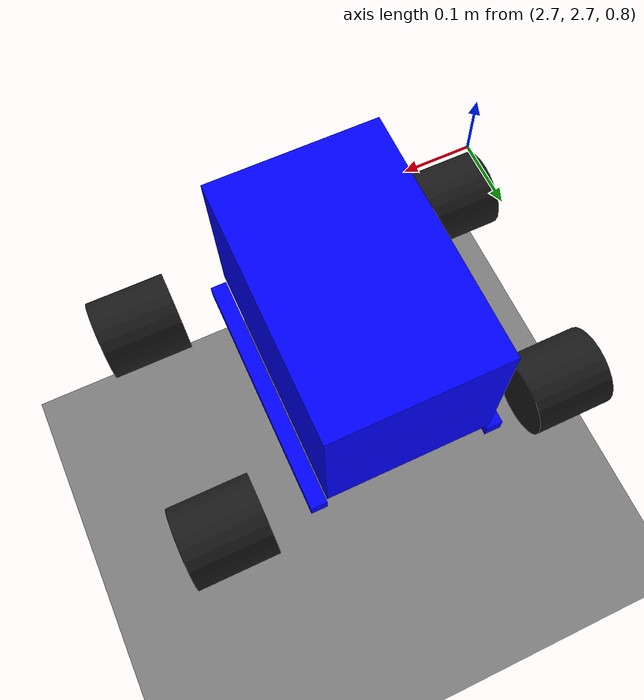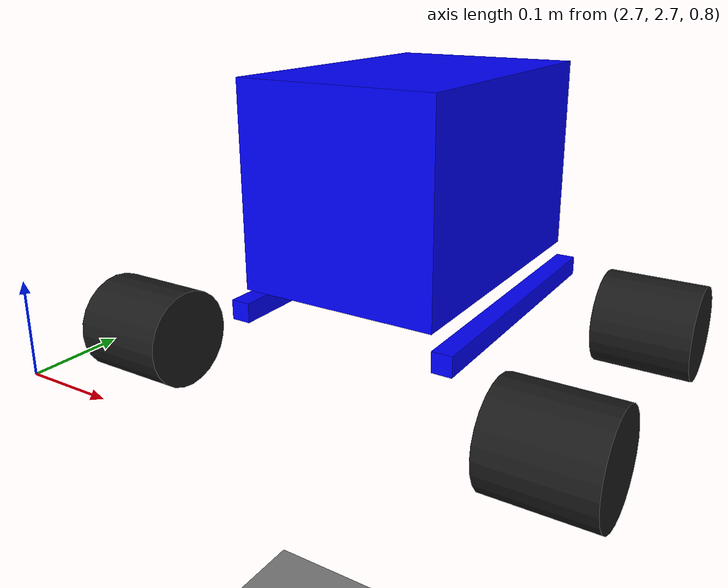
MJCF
<mujoco model="rover">
  <compiler angle="radian"/>

  <option timestep="0.005" gravity="0 0 -1.81"/>

  <worldbody>
    <geom name="surface_terrain_geom" size="50 50 0.05" type="box"/>
    <body name="chassis" pos="3 3 1">
      <inertial pos="0 -0.073 -0.109" mass="8" diaginertia="1 1 1"/>
      <joint name="chassis_free" type="free"/>
      <geom size="0.1 0.15 0.1" pos="0 -0.05 0" type="box" mass="0" rgba="0 0 1 1"/>
      <body name="rocker-left">
        <joint name="rocker-left-hinge" pos="-0.18 -0.073 -0.109" axis="1 0 0" range="-0.610865 0.610865" frictionloss="0.135"/>
        <geom size="0.01 0.15 0.01" pos="-0.11 -0.05 -0.125" type="box" mass="0.2" rgba="0 0 1 1"/>
        <body name="wheel-f-left" pos="-0.21779 0.0694 -0.16307" quat="0.707107 0 0.707107 0">
          <inertial pos="0 0 0" mass="0.24" diaginertia="0.001 0.001 0.001"/>
          <joint name="wheel-f-left-hinge" pos="0 0 0" axis="0 0 1" damping="1.89"/>
          <geom size="0.05 0.05" type="cylinder" condim="6" friction="2 0.05 0.015" density="100" rgba="0.1 0.1 0.1 1"/>
        </body>
        <body name="wheel-b-left" pos="-0.21779 -0.21384 -0.16307" quat="0.707107 0 0.707107 0">
          <inertial pos="0 0 0" mass="0.24" diaginertia="0.001 0.001 0.001"/>
          <joint name="wheel-b-left-hinge" pos="0 0 0" axis="0 0 1" damping="1.89"/>
          <geom size="0.05 0.05" type="cylinder" condim="6" friction="2 0.05 0.015" density="100" rgba="0.1 0.1 0.1 1"/>
        </body>
      </body>
      <body name="rocker-right">
        <joint name="rocker-right-hinge" pos="0.18 -0.073 -0.109" axis="1 0 0" range="-0.610865 0.610865" frictionloss="0.135"/>
        <geom size="0.01 0.15 0.01" pos="0.11 -0.05 -0.125" type="box" mass="0.2" rgba="0 0 1 1"/>
        <body name="wheel-f-right" pos="0.21779 0.0694 -0.16307" quat="0.707107 0 0.707107 0">
          <inertial pos="0 0 0" mass="0.24" diaginertia="0.001 0.001 0.001"/>
          <joint name="wheel-f-right-hinge" pos="0 0 0" axis="0 0 1" damping="1.89"/>
          <geom size="0.05 0.05" type="cylinder" condim="6" friction="2 0.05 0.015" density="100" rgba="0.1 0.1 0.1 1"/>
        </body>
        <body name="wheel-b-right" pos="0.21779 -0.21384 -0.16307" quat="0.707107 0 0.707107 0">
          <inertial pos="0 0 0" mass="0.24" diaginertia="0.001 0.001 0.001"/>
          <joint name="wheel-b-right-hinge" pos="0 0 0" axis="0 0 1" damping="1.89"/>
          <geom size="0.05 0.05" type="cylinder" condim="6" friction="2 0.05 0.015" density="100" rgba="0.1 0.1 0.1 1"/>
        </body>
      </body>
    </body>
  </worldbody>

  <contact>
    <exclude body1="chassis" body2="rocker-left"/>
    <exclude body1="chassis" body2="wheel-f-left"/>
    <exclude body1="chassis" body2="wheel-b-left"/>
    <exclude body1="chassis" body2="rocker-right"/>
    <exclude body1="chassis" body2="wheel-f-right"/>
    <exclude body1="chassis" body2="wheel-b-right"/>
    <exclude body1="rocker-left" body2="wheel-f-left"/>
    <exclude body1="rocker-left" body2="wheel-b-left"/>
    <exclude body1="rocker-right" body2="wheel-f-right"/>
    <exclude body1="rocker-right" body2="wheel-b-right"/>
  </contact>

  <equality>
    <joint joint1="rocker-left-hinge" joint2="rocker-right-hinge" polycoef="0 -1 0 0 0"/>
  </equality>

  <actuator>
    <general name="wheel-f-left-motor" joint="wheel-f-left-hinge" ctrlrange="-4.5 4.5" forcerange="-4.5 4.5"/>
    <general name="wheel-b-left-motor" joint="wheel-b-left-hinge" ctrlrange="-4.5 4.5" forcerange="-4.5 4.5"/>
    <general name="wheel-f-right-motor" joint="wheel-f-right-hinge" ctrlrange="-4.5 4.5" forcerange="-4.5 4.5"/>
    <general name="wheel-b-right-motor" joint="wheel-b-right-hinge" ctrlrange="-4.5 4.5" forcerange="-4.5 4.5"/>
  </actuator>
</mujoco>
